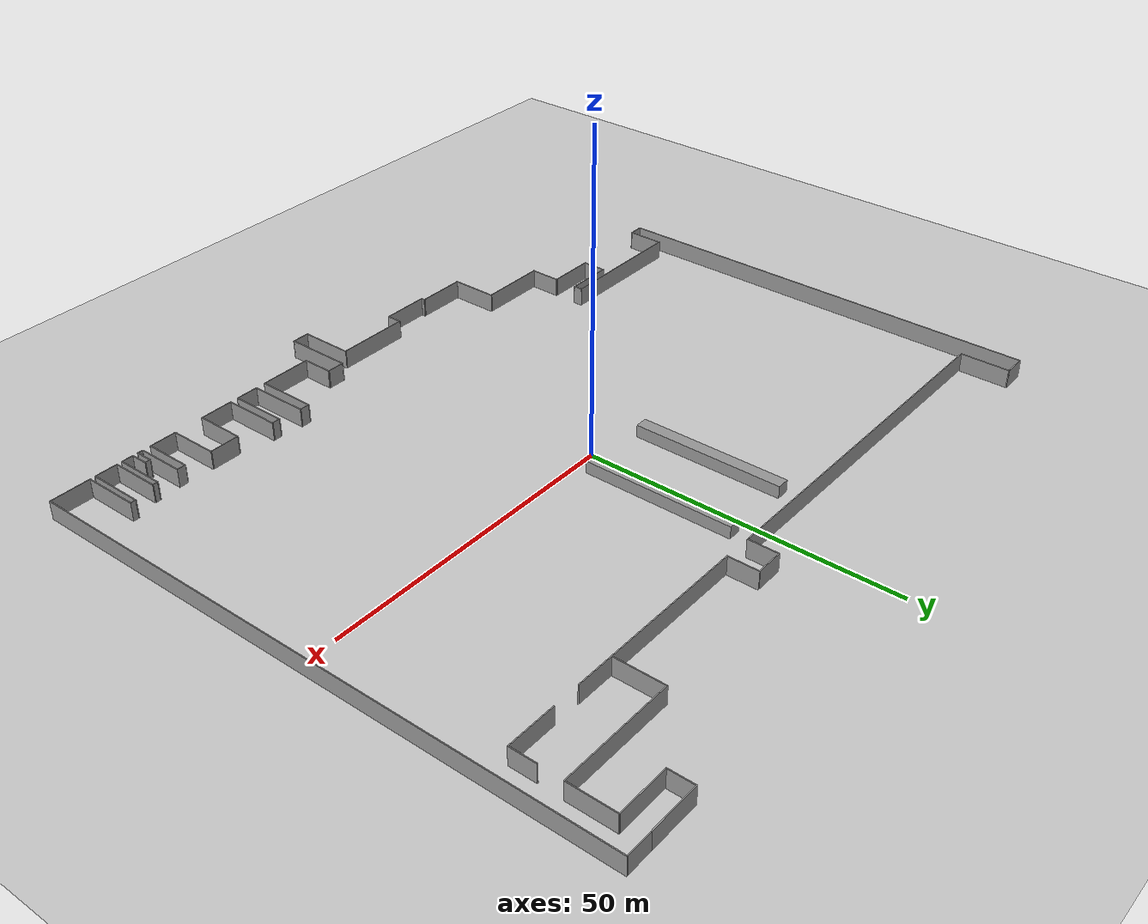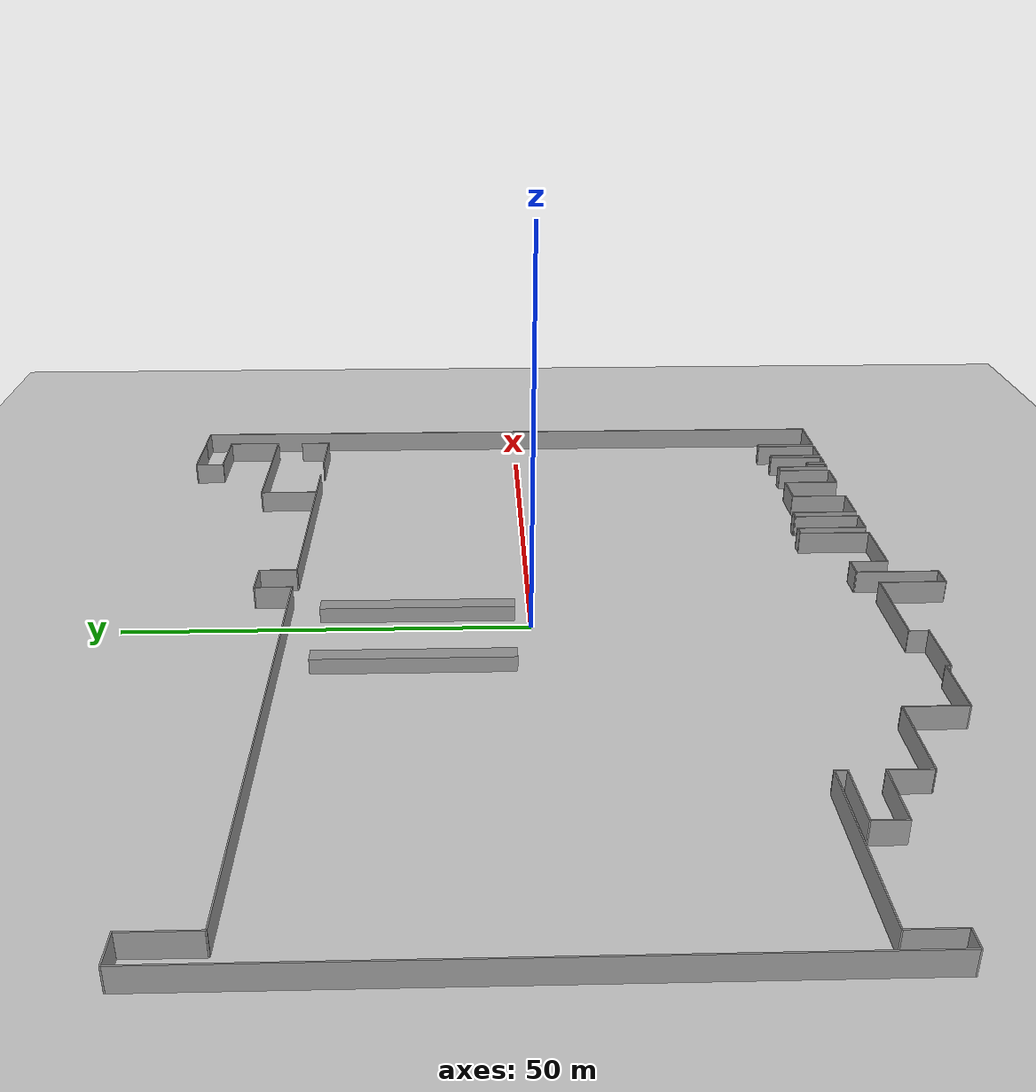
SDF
<sdf version="1.6">
 <world name="default">
  <model name="ground_plane">
   <static>1</static>
   <link name="link">
    <collision name="collision">
     <geometry><plane><normal>0 0 1</normal><size>120 120</size></plane></geometry>
     <surface>
      <contact><collide_bitmask>65535</collide_bitmask></contact>
      <friction><ode><mu>100</mu><mu2>50</mu2></ode></friction>
     </surface>
    </collision>
    <visual name="visual">
     <cast_shadows>0</cast_shadows>
     <geometry><plane><normal>0 0 1</normal><size>120 120</size></plane></geometry>
     <material>
      <script><uri>file://media/materials/scripts/gazebo.material</uri><name>Gazebo/Grey</name></script>
     </material>
    </visual>
   </link>
  </model>
  <model name="walls">
   <pose>-0.3813 -1.8007 0 0 -0 0</pose>
   <link name="Wall_0">
    <collision name="Wall_0_Collision">
     <geometry><box><size>21.75 0.15 3</size></box></geometry>
     <pose>0 0 1.5 0 -0 0</pose>
    </collision>
    <visual name="Wall_0_Visual">
     <pose>0 0 1.5 0 -0 0</pose>
     <geometry><box><size>21.75 0.15 3</size></box></geometry>
     <material>
      <script><uri>file://media/materials/scripts/gazebo.material</uri><name>Gazebo/Grey</name></script>
      <ambient>1 1 1 1</ambient>
     </material>
     <meta><layer>0</layer></meta>
    </visual>
    <pose>-43.7799 -26.4633 0 0 -0 3.14159</pose>
   </link>
   <link name="Wall_1">
    <collision name="Wall_1_Collision">
     <geometry><box><size>6 0.15 3</size></box></geometry>
     <pose>0 0 1.5 0 -0 0</pose>
    </collision>
    <visual name="Wall_1_Visual">
     <pose>0 0 1.5 0 -0 0</pose>
     <geometry><box><size>6 0.15 3</size></box></geometry>
     <material>
      <script><uri>file://media/materials/scripts/gazebo.material</uri><name>Gazebo/Grey</name></script>
      <ambient>1 1 1 1</ambient>
     </material>
     <meta><layer>0</layer></meta>
    </visual>
    <pose>-54.5799 -29.3883 0 0 -0 -1.5708</pose>
   </link>
   <link name="Wall_10">
    <collision name="Wall_10_Collision">
     <geometry><box><size>4.25 0.15 3</size></box></geometry>
     <pose>0 0 1.5 0 -0 0</pose>
    </collision>
    <visual name="Wall_10_Visual">
     <pose>0 0 1.5 0 -0 0</pose>
     <geometry><box><size>4.25 0.15 3</size></box></geometry>
     <material>
      <script><uri>file://media/materials/scripts/gazebo.material</uri><name>Gazebo/Grey</name></script>
      <ambient>1 1 1 1</ambient>
     </material>
     <meta><layer>0</layer></meta>
    </visual>
    <pose>52.8619 33.4688 0 0 -0 1.5708</pose>
   </link>
   <link name="Wall_100">
    <collision name="Wall_100_Collision">
     <geometry><box><size>3.9 0.15 3</size></box></geometry>
     <pose>0 0 1.5 0 -0 0</pose>
    </collision>
    <visual name="Wall_100_Visual">
     <pose>0 0 1.5 0 -0 0</pose>
     <geometry><box><size>3.9 0.15 3</size></box></geometry>
     <material>
      <script><uri>file://media/materials/scripts/gazebo.material</uri><name>Gazebo/Grey</name></script>
      <ambient>1 1 1 1</ambient>
     </material>
     <meta><layer>0</layer></meta>
    </visual>
    <pose>-55.0561 39.3752 0 0 -0 3.14159</pose>
   </link>
   <link name="Wall_102">
    <collision name="Wall_102_Collision">
     <geometry><box><size>7.75 0.15 3</size></box></geometry>
     <pose>0 0 1.5 0 -0 0</pose>
    </collision>
    <visual name="Wall_102_Visual">
     <pose>0 0 1.5 0 -0 0</pose>
     <geometry><box><size>7.75 0.15 3</size></box></geometry>
     <material>
      <script><uri>file://media/materials/scripts/gazebo.material</uri><name>Gazebo/Grey</name></script>
      <ambient>1 1 1 1</ambient>
     </material>
     <meta><layer>0</layer></meta>
    </visual>
    <pose>-36.7799 -27.8133 0 0 -0 3.14159</pose>
   </link>
   <link name="Wall_103">
    <collision name="Wall_103_Collision">
     <geometry><box><size>4 0.15 3</size></box></geometry>
     <pose>0 0 1.5 0 -0 0</pose>
    </collision>
    <visual name="Wall_103_Visual">
     <pose>0 0 1.5 0 -0 0</pose>
     <geometry><box><size>4 0.15 3</size></box></geometry>
     <material>
      <script><uri>file://media/materials/scripts/gazebo.material</uri><name>Gazebo/Grey</name></script>
      <ambient>1 1 1 1</ambient>
     </material>
     <meta><layer>0</layer></meta>
    </visual>
    <pose>-40.5799 -29.7383 0 0 -0 -1.5708</pose>
   </link>
   <link name="Wall_104">
    <collision name="Wall_104_Collision">
     <geometry><box><size>7.75 0.15 3</size></box></geometry>
     <pose>0 0 1.5 0 -0 0</pose>
    </collision>
    <visual name="Wall_104_Visual">
     <pose>0 0 1.5 0 -0 0</pose>
     <geometry><box><size>7.75 0.15 3</size></box></geometry>
     <material>
      <script><uri>file://media/materials/scripts/gazebo.material</uri><name>Gazebo/Grey</name></script>
      <ambient>1 1 1 1</ambient>
     </material>
     <meta><layer>0</layer></meta>
    </visual>
    <pose>-36.7799 -31.6633 0 0 -0 0</pose>
   </link>
   <link name="Wall_110">
    <collision name="Wall_110_Collision">
     <geometry><box><size>11 0.15 3</size></box></geometry>
     <pose>0 0 1.5 0 -0 0</pose>
    </collision>
    <visual name="Wall_110_Visual">
     <pose>0 0 1.5 0 -0 0</pose>
     <geometry><box><size>11 0.15 3</size></box></geometry>
     <material>
      <script><uri>file://media/materials/scripts/gazebo.material</uri><name>Gazebo/Grey</name></script>
      <ambient>1 1 1 1</ambient>
     </material>
     <meta><layer>0</layer></meta>
    </visual>
    <pose>-27.5715 -36.575 0 0 -0 3.14159</pose>
   </link>
   <link name="Wall_111">
    <collision name="Wall_111_Collision">
     <geometry><box><size>5.06174 0.15 3</size></box></geometry>
     <pose>0 0 1.5 0 -0 0</pose>
    </collision>
    <visual name="Wall_111_Visual">
     <pose>0 0 1.5 0 -0 0</pose>
     <geometry><box><size>5.06174 0.15 3</size></box></geometry>
     <material>
      <script><uri>file://media/materials/scripts/gazebo.material</uri><name>Gazebo/Grey</name></script>
      <ambient>1 1 1 1</ambient>
     </material>
     <meta><layer>0</layer></meta>
    </visual>
    <pose>-32.9882 -34.1191 0 0 -0 1.56743</pose>
   </link>
   <link name="Wall_113">
    <collision name="Wall_113_Collision">
     <geometry><box><size>2.5 0.15 3</size></box></geometry>
     <pose>0 0 1.5 0 -0 0</pose>
    </collision>
    <visual name="Wall_113_Visual">
     <pose>0 0 1.5 0 -0 0</pose>
     <geometry><box><size>2.5 0.15 3</size></box></geometry>
     <material>
      <script><uri>file://media/materials/scripts/gazebo.material</uri><name>Gazebo/Grey</name></script>
      <ambient>1 1 1 1</ambient>
     </material>
     <meta><layer>0</layer></meta>
    </visual>
    <pose>-6.64678 -43.4103 0 0 -0 -1.5708</pose>
   </link>
   <link name="Wall_114">
    <collision name="Wall_114_Collision">
     <geometry><box><size>7.75 0.15 3</size></box></geometry>
     <pose>0 0 1.5 0 -0 0</pose>
    </collision>
    <visual name="Wall_114_Visual">
     <pose>0 0 1.5 0 -0 0</pose>
     <geometry><box><size>7.75 0.15 3</size></box></geometry>
     <material>
      <script><uri>file://media/materials/scripts/gazebo.material</uri><name>Gazebo/Grey</name></script>
      <ambient>1 1 1 1</ambient>
     </material>
     <meta><layer>0</layer></meta>
    </visual>
    <pose>-10.4468 -44.5853 0 0 -0 3.14159</pose>
   </link>
   <link name="Wall_116">
    <collision name="Wall_116_Collision">
     <geometry><box><size>0.75 0.15 3</size></box></geometry>
     <pose>0 0 1.5 0 -0 0</pose>
    </collision>
    <visual name="Wall_116_Visual">
     <pose>0 0 1.5 0 -0 0</pose>
     <geometry><box><size>0.75 0.15 3</size></box></geometry>
     <material>
      <script><uri>file://media/materials/scripts/gazebo.material</uri><name>Gazebo/Grey</name></script>
      <ambient>1 1 1 1</ambient>
     </material>
     <meta><layer>0</layer></meta>
    </visual>
    <pose>-14.2468 -44.2853 0 0 -0 1.5708</pose>
   </link>
   <link name="Wall_117">
    <collision name="Wall_117_Collision">
     <geometry><box><size>8.05 0.15 3</size></box></geometry>
     <pose>0 0 1.5 0 -0 0</pose>
    </collision>
    <visual name="Wall_117_Visual">
     <pose>0 0 1.5 0 -0 0</pose>
     <geometry><box><size>8.05 0.15 3</size></box></geometry>
     <material>
      <script><uri>file://media/materials/scripts/gazebo.material</uri><name>Gazebo/Grey</name></script>
      <ambient>1 1 1 1</ambient>
     </material>
     <meta><layer>0</layer></meta>
    </visual>
    <pose>-18.1968 -43.9853 0 0 -0 3.14159</pose>
   </link>
   <link name="Wall_119">
    <collision name="Wall_119_Collision">
     <geometry><box><size>8.5 0.15 3</size></box></geometry>
     <pose>0 0 1.5 0 -0 0</pose>
    </collision>
    <visual name="Wall_119_Visual">
     <pose>0 0 1.5 0 -0 0</pose>
     <geometry><box><size>8.5 0.15 3</size></box></geometry>
     <material>
      <script><uri>file://media/materials/scripts/gazebo.material</uri><name>Gazebo/Grey</name></script>
      <ambient>1 1 1 1</ambient>
     </material>
     <meta><layer>0</layer></meta>
    </visual>
    <pose>5.20322 -46.4103 0 0 -0 -1.5708</pose>
   </link>
   <link name="Wall_12">
    <collision name="Wall_12_Collision">
     <geometry><box><size>18.75 0.15 3</size></box></geometry>
     <pose>0 0 1.5 0 -0 0</pose>
    </collision>
    <visual name="Wall_12_Visual">
     <pose>0 0 1.5 0 -0 0</pose>
     <geometry><box><size>18.75 0.15 3</size></box></geometry>
     <material>
      <script><uri>file://media/materials/scripts/gazebo.material</uri><name>Gazebo/Grey</name></script>
      <ambient>1 1 1 1</ambient>
     </material>
     <meta><layer>0</layer></meta>
    </visual>
    <pose>43.6596 39.3448 0 0 -0 3.14159</pose>
   </link>
   <link name="Wall_123">
    <collision name="Wall_123_Collision">
     <geometry><box><size>10.7438 0.15 3</size></box></geometry>
     <pose>0 0 1.5 0 -0 0</pose>
    </collision>
    <visual name="Wall_123_Visual">
     <pose>0 0 1.5 0 -0 0</pose>
     <geometry><box><size>10.7438 0.15 3</size></box></geometry>
     <material>
      <script><uri>file://media/materials/scripts/gazebo.material</uri><name>Gazebo/Grey</name></script>
      <ambient>1 1 1 1</ambient>
     </material>
     <meta><layer>0</layer></meta>
    </visual>
    <pose>7.99251 -45.3591 0 0 -0 -1.57021</pose>
   </link>
   <link name="Wall_126">
    <collision name="Wall_126_Collision">
     <geometry><box><size>8.25 0.15 3</size></box></geometry>
     <pose>0 0 1.5 0 -0 0</pose>
    </collision>
    <visual name="Wall_126_Visual">
     <pose>0 0 1.5 0 -0 0</pose>
     <geometry><box><size>8.25 0.15 3</size></box></geometry>
     <material>
      <script><uri>file://media/materials/scripts/gazebo.material</uri><name>Gazebo/Grey</name></script>
      <ambient>1 1 1 1</ambient>
     </material>
     <meta><layer>0</layer></meta>
    </visual>
    <pose>48.7751 50.656 0 0 -0 3.14159</pose>
   </link>
   <link name="Wall_127">
    <collision name="Wall_127_Collision">
     <geometry><box><size>3.97 0.15 3</size></box></geometry>
     <pose>0 0 1.5 0 -0 0</pose>
    </collision>
    <visual name="Wall_127_Visual">
     <pose>0 0 1.5 0 -0 0</pose>
     <geometry><box><size>3.97 0.15 3</size></box></geometry>
     <material>
      <script><uri>file://media/materials/scripts/gazebo.material</uri><name>Gazebo/Grey</name></script>
      <ambient>1 1 1 1</ambient>
     </material>
     <meta><layer>0</layer></meta>
    </visual>
    <pose>44.7251 48.606 0 0 -0 -1.5708</pose>
   </link>
   <link name="Wall_130">
    <collision name="Wall_130_Collision">
     <geometry><box><size>2.93 0.15 3</size></box></geometry>
     <pose>0 0 1.5 0 -0 0</pose>
    </collision>
    <visual name="Wall_130_Visual">
     <pose>0 0 1.5 0 -0 0</pose>
     <geometry><box><size>2.93 0.15 3</size></box></geometry>
     <material>
      <script><uri>file://media/materials/scripts/gazebo.material</uri><name>Gazebo/Grey</name></script>
      <ambient>1 1 1 1</ambient>
     </material>
     <meta><layer>0</layer></meta>
    </visual>
    <pose>6.6056 -50.656 0 0 -0 3.14159</pose>
   </link>
   <link name="Wall_14">
    <collision name="Wall_14_Collision">
     <geometry><box><size>7.5 0.15 3</size></box></geometry>
     <pose>0 0 1.5 0 -0 0</pose>
    </collision>
    <visual name="Wall_14_Visual">
     <pose>0 0 1.5 0 -0 0</pose>
     <geometry><box><size>7.5 0.15 3</size></box></geometry>
     <material>
      <script><uri>file://media/materials/scripts/gazebo.material</uri><name>Gazebo/Grey</name></script>
      <ambient>1 1 1 1</ambient>
     </material>
     <meta><layer>0</layer></meta>
    </visual>
    <pose>52.9596 43.0198 0 0 -0 1.5708</pose>
   </link>
   <link name="Wall_15">
    <collision name="Wall_15_Collision">
     <geometry><box><size>8.25 0.15 3</size></box></geometry>
     <pose>0 0 1.5 0 -0 0</pose>
    </collision>
    <visual name="Wall_15_Visual">
     <pose>0 0 1.5 0 -0 0</pose>
     <geometry><box><size>8.25 0.15 3</size></box></geometry>
     <material>
      <script><uri>file://media/materials/scripts/gazebo.material</uri><name>Gazebo/Grey</name></script>
      <ambient>1 1 1 1</ambient>
     </material>
     <meta><layer>0</layer></meta>
    </visual>
    <pose>48.9096 46.6948 0 0 -0 3.14159</pose>
   </link>
   <link name="Wall_17">
    <collision name="Wall_17_Collision">
     <geometry><box><size>4.25 0.15 3</size></box></geometry>
     <pose>0 0 1.5 0 -0 0</pose>
    </collision>
    <visual name="Wall_17_Visual">
     <pose>0 0 1.5 0 -0 0</pose>
     <geometry><box><size>4.25 0.15 3</size></box></geometry>
     <material>
      <script><uri>file://media/materials/scripts/gazebo.material</uri><name>Gazebo/Grey</name></script>
      <ambient>1 1 1 1</ambient>
     </material>
     <meta><layer>0</layer></meta>
    </visual>
    <pose>54.8751 50.656 0 0 -0 0</pose>
   </link>
   <link name="Wall_2">
    <collision name="Wall_2_Collision">
     <geometry><box><size>2.5 0.15 3</size></box></geometry>
     <pose>0 0 1.5 0 -0 0</pose>
    </collision>
    <visual name="Wall_2_Visual">
     <pose>0 0 1.5 0 -0 0</pose>
     <geometry><box><size>2.5 0.15 3</size></box></geometry>
     <material>
      <script><uri>file://media/materials/scripts/gazebo.material</uri><name>Gazebo/Grey</name></script>
      <ambient>1 1 1 1</ambient>
     </material>
     <meta><layer>0</layer></meta>
    </visual>
    <pose>-55.7549 -32.3132 0 0 -0 3.14159</pose>
   </link>
   <link name="Wall_3">
    <collision name="Wall_3_Collision">
     <geometry><box><size>71.75 0.15 3</size></box></geometry>
     <pose>0 0 1.5 0 -0 0</pose>
    </collision>
    <visual name="Wall_3_Visual">
     <pose>0 0 1.5 0 -0 0</pose>
     <geometry><box><size>71.75 0.15 3</size></box></geometry>
     <material>
      <script><uri>file://media/materials/scripts/gazebo.material</uri><name>Gazebo/Grey</name></script>
      <ambient>1 1 1 1</ambient>
     </material>
     <meta><layer>0</layer></meta>
    </visual>
    <pose>-56.9299 3.48675 0 0 -0 1.5708</pose>
   </link>
   <link name="Wall_33">
    <collision name="Wall_33_Collision">
     <geometry><box><size>1.5 0.15 3</size></box></geometry>
     <pose>0 0 1.5 0 -0 0</pose>
    </collision>
    <visual name="Wall_33_Visual">
     <pose>0 0 1.5 0 -0 0</pose>
     <geometry><box><size>1.5 0.15 3</size></box></geometry>
     <material>
      <script><uri>file://media/materials/scripts/gazebo.material</uri><name>Gazebo/Grey</name></script>
      <ambient>1 1 1 1</ambient>
     </material>
     <meta><layer>0</layer></meta>
    </visual>
    <pose>-32.9799 -27.1383 0 0 -0 -1.5708</pose>
   </link>
   <link name="Wall_37">
    <collision name="Wall_37_Collision">
     <geometry><box><size>7.5 0.15 3</size></box></geometry>
     <pose>0 0 1.5 0 -0 0</pose>
    </collision>
    <visual name="Wall_37_Visual">
     <pose>0 0 1.5 0 -0 0</pose>
     <geometry><box><size>7.5 0.15 3</size></box></geometry>
     <material>
      <script><uri>file://media/materials/scripts/gazebo.material</uri><name>Gazebo/Grey</name></script>
      <ambient>1 1 1 1</ambient>
     </material>
     <meta><layer>0</layer></meta>
    </visual>
    <pose>-22.1465 -40.25 0 0 -0 -1.5708</pose>
   </link>
   <link name="Wall_41">
    <collision name="Wall_41_Collision">
     <geometry><box><size>12 0.15 3</size></box></geometry>
     <pose>0 0 1.5 0 -0 0</pose>
    </collision>
    <visual name="Wall_41_Visual">
     <pose>0 0 1.5 0 -0 0</pose>
     <geometry><box><size>12 0.15 3</size></box></geometry>
     <material>
      <script><uri>file://media/materials/scripts/gazebo.material</uri><name>Gazebo/Grey</name></script>
      <ambient>1 1 1 1</ambient>
     </material>
     <meta><layer>0</layer></meta>
    </visual>
    <pose>-0.721776 -42.2353 0 0 -0 0</pose>
   </link>
   <link name="Wall_44">
    <collision name="Wall_44_Collision">
     <geometry><box><size>3 0.15 3</size></box></geometry>
     <pose>0 0 1.5 0 -0 0</pose>
    </collision>
    <visual name="Wall_44_Visual">
     <pose>0 0 1.5 0 -0 0</pose>
     <geometry><box><size>3 0.15 3</size></box></geometry>
     <material>
      <script><uri>file://media/materials/scripts/gazebo.material</uri><name>Gazebo/Grey</name></script>
      <ambient>1 1 1 1</ambient>
     </material>
     <meta><layer>0</layer></meta>
    </visual>
    <pose>9.41442 -40.0622 0 0 -0 0</pose>
   </link>
   <link name="Wall_45">
    <collision name="Wall_45_Collision">
     <geometry><box><size>5.0287 0.15 3</size></box></geometry>
     <pose>0 0 1.5 0 -0 0</pose>
    </collision>
    <visual name="Wall_45_Visual">
     <pose>0 0 1.5 0 -0 0</pose>
     <geometry><box><size>5.0287 0.15 3</size></box></geometry>
     <material>
      <script><uri>file://media/materials/scripts/gazebo.material</uri><name>Gazebo/Grey</name></script>
      <ambient>1 1 1 1</ambient>
     </material>
     <meta><layer>0</layer></meta>
    </visual>
    <pose>10.8394 -42.5015 0 0 -0 -1.5708</pose>
   </link>
   <link name="Wall_46">
    <collision name="Wall_46_Collision">
     <geometry><box><size>8.5 0.15 3</size></box></geometry>
     <pose>0 0 1.5 0 -0 0</pose>
    </collision>
    <visual name="Wall_46_Visual">
     <pose>0 0 1.5 0 -0 0</pose>
     <geometry><box><size>8.5 0.15 3</size></box></geometry>
     <material>
      <script><uri>file://media/materials/scripts/gazebo.material</uri><name>Gazebo/Grey</name></script>
      <ambient>1 1 1 1</ambient>
     </material>
     <meta><layer>0</layer></meta>
    </visual>
    <pose>15.0144 -44.9305 0 0 -0 0</pose>
   </link>
   <link name="Wall_47">
    <collision name="Wall_47_Collision">
     <geometry><box><size>9.5287 0.15 3</size></box></geometry>
     <pose>0 0 1.5 0 -0 0</pose>
    </collision>
    <visual name="Wall_47_Visual">
     <pose>0 0 1.5 0 -0 0</pose>
     <geometry><box><size>9.5287 0.15 3</size></box></geometry>
     <material>
      <script><uri>file://media/materials/scripts/gazebo.material</uri><name>Gazebo/Grey</name></script>
      <ambient>1 1 1 1</ambient>
     </material>
     <meta><layer>0</layer></meta>
    </visual>
    <pose>19.1894 -40.2515 0 0 -0 1.5708</pose>
   </link>
   <link name="Wall_48">
    <collision name="Wall_48_Collision">
     <geometry><box><size>1.75 0.15 3</size></box></geometry>
     <pose>0 0 1.5 0 -0 0</pose>
    </collision>
    <visual name="Wall_48_Visual">
     <pose>0 0 1.5 0 -0 0</pose>
     <geometry><box><size>1.75 0.15 3</size></box></geometry>
     <material>
      <script><uri>file://media/materials/scripts/gazebo.material</uri><name>Gazebo/Grey</name></script>
      <ambient>1 1 1 1</ambient>
     </material>
     <meta><layer>0</layer></meta>
    </visual>
    <pose>19.9894 -35.5622 0 0 -0 0</pose>
   </link>
   <link name="Wall_49">
    <collision name="Wall_49_Collision">
     <geometry><box><size>9.51834 0.15 3</size></box></geometry>
     <pose>0 0 1.5 0 -0 0</pose>
    </collision>
    <visual name="Wall_49_Visual">
     <pose>0 0 1.5 0 -0 0</pose>
     <geometry><box><size>9.51834 0.15 3</size></box></geometry>
     <material>
      <script><uri>file://media/materials/scripts/gazebo.material</uri><name>Gazebo/Grey</name></script>
      <ambient>1 1 1 1</ambient>
     </material>
     <meta><layer>0</layer></meta>
    </visual>
    <pose>20.7946 -40.2463 0 0 -0 -1.56969</pose>
   </link>
   <link name="Wall_5">
    <collision name="Wall_5_Collision">
     <geometry><box><size>59.25 0.15 3</size></box></geometry>
     <pose>0 0 1.5 0 -0 0</pose>
    </collision>
    <visual name="Wall_5_Visual">
     <pose>0 0 1.5 0 -0 0</pose>
     <geometry><box><size>59.25 0.15 3</size></box></geometry>
     <material>
      <script><uri>file://media/materials/scripts/gazebo.material</uri><name>Gazebo/Grey</name></script>
      <ambient>1 1 1 1</ambient>
     </material>
     <meta><layer>0</layer></meta>
    </visual>
    <pose>-23.6461 31.5252 0 0 -0 0</pose>
   </link>
   <link name="Wall_50">
    <collision name="Wall_50_Collision">
     <geometry><box><size>3.75 0.15 3</size></box></geometry>
     <pose>0 0 1.5 0 -0 0</pose>
    </collision>
    <visual name="Wall_50_Visual">
     <pose>0 0 1.5 0 -0 0</pose>
     <geometry><box><size>3.75 0.15 3</size></box></geometry>
     <material>
      <script><uri>file://media/materials/scripts/gazebo.material</uri><name>Gazebo/Grey</name></script>
      <ambient>1 1 1 1</ambient>
     </material>
     <meta><layer>0</layer></meta>
    </visual>
    <pose>22.5998 -44.9201 0 0 -0 0</pose>
   </link>
   <link name="Wall_51">
    <collision name="Wall_51_Collision">
     <geometry><box><size>9.01834 0.15 3</size></box></geometry>
     <pose>0 0 1.5 0 -0 0</pose>
    </collision>
    <visual name="Wall_51_Visual">
     <pose>0 0 1.5 0 -0 0</pose>
     <geometry><box><size>9.01834 0.15 3</size></box></geometry>
     <material>
      <script><uri>file://media/materials/scripts/gazebo.material</uri><name>Gazebo/Grey</name></script>
      <ambient>1 1 1 1</ambient>
     </material>
     <meta><layer>0</layer></meta>
    </visual>
    <pose>24.3946 -40.4963 0 0 -0 1.57197</pose>
   </link>
   <link name="Wall_52">
    <collision name="Wall_52_Collision">
     <geometry><box><size>1.5 0.15 3</size></box></geometry>
     <pose>0 0 1.5 0 -0 0</pose>
    </collision>
    <visual name="Wall_52_Visual">
     <pose>0 0 1.5 0 -0 0</pose>
     <geometry><box><size>1.5 0.15 3</size></box></geometry>
     <material>
      <script><uri>file://media/materials/scripts/gazebo.material</uri><name>Gazebo/Grey</name></script>
      <ambient>1 1 1 1</ambient>
     </material>
     <meta><layer>0</layer></meta>
    </visual>
    <pose>25.0644 -36.0622 0 0 -0 0</pose>
   </link>
   <link name="Wall_53">
    <collision name="Wall_53_Collision">
     <geometry><box><size>9.01713 0.15 3</size></box></geometry>
     <pose>0 0 1.5 0 -0 0</pose>
    </collision>
    <visual name="Wall_53_Visual">
     <pose>0 0 1.5 0 -0 0</pose>
     <geometry><box><size>9.01713 0.15 3</size></box></geometry>
     <material>
      <script><uri>file://media/materials/scripts/gazebo.material</uri><name>Gazebo/Grey</name></script>
      <ambient>1 1 1 1</ambient>
     </material>
     <meta><layer>0</layer></meta>
    </visual>
    <pose>25.7394 -40.4957 0 0 -0 -1.5708</pose>
   </link>
   <link name="Wall_54">
    <collision name="Wall_54_Collision">
     <geometry><box><size>5.5 0.15 3</size></box></geometry>
     <pose>0 0 1.5 0 -0 0</pose>
    </collision>
    <visual name="Wall_54_Visual">
     <pose>0 0 1.5 0 -0 0</pose>
     <geometry><box><size>5.5 0.15 3</size></box></geometry>
     <material>
      <script><uri>file://media/materials/scripts/gazebo.material</uri><name>Gazebo/Grey</name></script>
      <ambient>1 1 1 1</ambient>
     </material>
     <meta><layer>0</layer></meta>
    </visual>
    <pose>28.4144 -44.9189 0 0 -0 0</pose>
   </link>
   <link name="Wall_55">
    <collision name="Wall_55_Collision">
     <geometry><box><size>7.76713 0.15 3</size></box></geometry>
     <pose>0 0 1.5 0 -0 0</pose>
    </collision>
    <visual name="Wall_55_Visual">
     <pose>0 0 1.5 0 -0 0</pose>
     <geometry><box><size>7.76713 0.15 3</size></box></geometry>
     <material>
      <script><uri>file://media/materials/scripts/gazebo.material</uri><name>Gazebo/Grey</name></script>
      <ambient>1 1 1 1</ambient>
     </material>
     <meta><layer>0</layer></meta>
    </visual>
    <pose>31.0894 -41.1207 0 0 -0 1.5708</pose>
   </link>
   <link name="Wall_56">
    <collision name="Wall_56_Collision">
     <geometry><box><size>5 0.15 3</size></box></geometry>
     <pose>0 0 1.5 0 -0 0</pose>
    </collision>
    <visual name="Wall_56_Visual">
     <pose>0 0 1.5 0 -0 0</pose>
     <geometry><box><size>5 0.15 3</size></box></geometry>
     <material>
      <script><uri>file://media/materials/scripts/gazebo.material</uri><name>Gazebo/Grey</name></script>
      <ambient>1 1 1 1</ambient>
     </material>
     <meta><layer>0</layer></meta>
    </visual>
    <pose>33.5144 -37.3122 0 0 -0 0</pose>
   </link>
   <link name="Wall_57">
    <collision name="Wall_57_Collision">
     <geometry><box><size>7.75 0.15 3</size></box></geometry>
     <pose>0 0 1.5 0 -0 0</pose>
    </collision>
    <visual name="Wall_57_Visual">
     <pose>0 0 1.5 0 -0 0</pose>
     <geometry><box><size>7.75 0.15 3</size></box></geometry>
     <material>
      <script><uri>file://media/materials/scripts/gazebo.material</uri><name>Gazebo/Grey</name></script>
      <ambient>1 1 1 1</ambient>
     </material>
     <meta><layer>0</layer></meta>
    </visual>
    <pose>35.9394 -41.1122 0 0 -0 -1.5708</pose>
   </link>
   <link name="Wall_58">
    <collision name="Wall_58_Collision">
     <geometry><box><size>4.5 0.15 3</size></box></geometry>
     <pose>0 0 1.5 0 -0 0</pose>
    </collision>
    <visual name="Wall_58_Visual">
     <pose>0 0 1.5 0 -0 0</pose>
     <geometry><box><size>4.5 0.15 3</size></box></geometry>
     <material>
      <script><uri>file://media/materials/scripts/gazebo.material</uri><name>Gazebo/Grey</name></script>
      <ambient>1 1 1 1</ambient>
     </material>
     <meta><layer>0</layer></meta>
    </visual>
    <pose>38.1144 -44.9122 0 0 -0 0</pose>
   </link>
   <link name="Wall_59">
    <collision name="Wall_59_Collision">
     <geometry><box><size>7.5 0.15 3</size></box></geometry>
     <pose>0 0 1.5 0 -0 0</pose>
    </collision>
    <visual name="Wall_59_Visual">
     <pose>0 0 1.5 0 -0 0</pose>
     <geometry><box><size>7.5 0.15 3</size></box></geometry>
     <material>
      <script><uri>file://media/materials/scripts/gazebo.material</uri><name>Gazebo/Grey</name></script>
      <ambient>1 1 1 1</ambient>
     </material>
     <meta><layer>0</layer></meta>
    </visual>
    <pose>40.2894 -41.2372 0 0 -0 1.5708</pose>
   </link>
   <link name="Wall_60">
    <collision name="Wall_60_Collision">
     <geometry><box><size>1.5 0.15 3</size></box></geometry>
     <pose>0 0 1.5 0 -0 0</pose>
    </collision>
    <visual name="Wall_60_Visual">
     <pose>0 0 1.5 0 -0 0</pose>
     <geometry><box><size>1.5 0.15 3</size></box></geometry>
     <material>
      <script><uri>file://media/materials/scripts/gazebo.material</uri><name>Gazebo/Grey</name></script>
      <ambient>1 1 1 1</ambient>
     </material>
     <meta><layer>0</layer></meta>
    </visual>
    <pose>40.9644 -37.5622 0 0 -0 0</pose>
   </link>
   <link name="Wall_61">
    <collision name="Wall_61_Collision">
     <geometry><box><size>7.4988 0.15 3</size></box></geometry>
     <pose>0 0 1.5 0 -0 0</pose>
    </collision>
    <visual name="Wall_61_Visual">
     <pose>0 0 1.5 0 -0 0</pose>
     <geometry><box><size>7.4988 0.15 3</size></box></geometry>
     <material>
      <script><uri>file://media/materials/scripts/gazebo.material</uri><name>Gazebo/Grey</name></script>
      <ambient>1 1 1 1</ambient>
     </material>
     <meta><layer>0</layer></meta>
    </visual>
    <pose>41.6394 -41.2366 0 0 -0 -1.5708</pose>
   </link>
   <link name="Wall_68">
    <collision name="Wall_68_Collision">
     <geometry><box><size>1 0.15 3</size></box></geometry>
     <pose>0 0 1.5 0 -0 0</pose>
    </collision>
    <visual name="Wall_68_Visual">
     <pose>0 0 1.5 0 -0 0</pose>
     <geometry><box><size>1 0.15 3</size></box></geometry>
     <material>
      <script><uri>file://media/materials/scripts/gazebo.material</uri><name>Gazebo/Grey</name></script>
      <ambient>1 1 1 1</ambient>
     </material>
     <meta><layer>0</layer></meta>
    </visual>
    <pose>42.0644 -44.9213 0 0 -0 0</pose>
   </link>
   <link name="Wall_69">
    <collision name="Wall_69_Collision">
     <geometry><box><size>2.7488 0.15 3</size></box></geometry>
     <pose>0 0 1.5 0 -0 0</pose>
    </collision>
    <visual name="Wall_69_Visual">
     <pose>0 0 1.5 0 -0 0</pose>
     <geometry><box><size>2.7488 0.15 3</size></box></geometry>
     <material>
      <script><uri>file://media/materials/scripts/gazebo.material</uri><name>Gazebo/Grey</name></script>
      <ambient>1 1 1 1</ambient>
     </material>
     <meta><layer>0</layer></meta>
    </visual>
    <pose>42.4894 -43.6116 0 0 -0 1.5708</pose>
   </link>
   <link name="Wall_7">
    <collision name="Wall_7_Collision">
     <geometry><box><size>30.25 0.15 3</size></box></geometry>
     <pose>0 0 1.5 0 -0 0</pose>
    </collision>
    <visual name="Wall_7_Visual">
     <pose>0 0 1.5 0 -0 0</pose>
     <geometry><box><size>30.25 0.15 3</size></box></geometry>
     <material>
      <script><uri>file://media/materials/scripts/gazebo.material</uri><name>Gazebo/Grey</name></script>
      <ambient>1 1 1 1</ambient>
     </material>
     <meta><layer>0</layer></meta>
    </visual>
    <pose>25.4816 31.4188 0 0 -0 0</pose>
   </link>
   <link name="Wall_70">
    <collision name="Wall_70_Collision">
     <geometry><box><size>1 0.15 3</size></box></geometry>
     <pose>0 0 1.5 0 -0 0</pose>
    </collision>
    <visual name="Wall_70_Visual">
     <pose>0 0 1.5 0 -0 0</pose>
     <geometry><box><size>1 0.15 3</size></box></geometry>
     <material>
      <script><uri>file://media/materials/scripts/gazebo.material</uri><name>Gazebo/Grey</name></script>
      <ambient>1 1 1 1</ambient>
     </material>
     <meta><layer>0</layer></meta>
    </visual>
    <pose>42.9144 -42.3122 0 0 -0 0</pose>
   </link>
   <link name="Wall_71">
    <collision name="Wall_71_Collision">
     <geometry><box><size>2.7799 0.15 3</size></box></geometry>
     <pose>0 0 1.5 0 -0 0</pose>
    </collision>
    <visual name="Wall_71_Visual">
     <pose>0 0 1.5 0 -0 0</pose>
     <geometry><box><size>2.7799 0.15 3</size></box></geometry>
     <material>
      <script><uri>file://media/materials/scripts/gazebo.material</uri><name>Gazebo/Grey</name></script>
      <ambient>1 1 1 1</ambient>
     </material>
     <meta><layer>0</layer></meta>
    </visual>
    <pose>43.3394 -43.6271 0 0 -0 -1.5708</pose>
   </link>
   <link name="Wall_72">
    <collision name="Wall_72_Collision">
     <geometry><box><size>2 0.15 3</size></box></geometry>
     <pose>0 0 1.5 0 -0 0</pose>
    </collision>
    <visual name="Wall_72_Visual">
     <pose>0 0 1.5 0 -0 0</pose>
     <geometry><box><size>2 0.15 3</size></box></geometry>
     <material>
      <script><uri>file://media/materials/scripts/gazebo.material</uri><name>Gazebo/Grey</name></script>
      <ambient>1 1 1 1</ambient>
     </material>
     <meta><layer>0</layer></meta>
    </visual>
    <pose>44.2644 -44.9317 0 0 -0 0</pose>
   </link>
   <link name="Wall_73">
    <collision name="Wall_73_Collision">
     <geometry><box><size>7.7799 0.15 3</size></box></geometry>
     <pose>0 0 1.5 0 -0 0</pose>
    </collision>
    <visual name="Wall_73_Visual">
     <pose>0 0 1.5 0 -0 0</pose>
     <geometry><box><size>7.7799 0.15 3</size></box></geometry>
     <material>
      <script><uri>file://media/materials/scripts/gazebo.material</uri><name>Gazebo/Grey</name></script>
      <ambient>1 1 1 1</ambient>
     </material>
     <meta><layer>0</layer></meta>
    </visual>
    <pose>45.1894 -41.1271 0 0 -0 1.5708</pose>
   </link>
   <link name="Wall_74">
    <collision name="Wall_74_Collision">
     <geometry><box><size>1 0.15 3</size></box></geometry>
     <pose>0 0 1.5 0 -0 0</pose>
    </collision>
    <visual name="Wall_74_Visual">
     <pose>0 0 1.5 0 -0 0</pose>
     <geometry><box><size>1 0.15 3</size></box></geometry>
     <material>
      <script><uri>file://media/materials/scripts/gazebo.material</uri><name>Gazebo/Grey</name></script>
      <ambient>1 1 1 1</ambient>
     </material>
     <meta><layer>0</layer></meta>
    </visual>
    <pose>45.6144 -37.3122 0 0 -0 0</pose>
   </link>
   <link name="Wall_75">
    <collision name="Wall_75_Collision">
     <geometry><box><size>7.76956 0.15 3</size></box></geometry>
     <pose>0 0 1.5 0 -0 0</pose>
    </collision>
    <visual name="Wall_75_Visual">
     <pose>0 0 1.5 0 -0 0</pose>
     <geometry><box><size>7.76956 0.15 3</size></box></geometry>
     <material>
      <script><uri>file://media/materials/scripts/gazebo.material</uri><name>Gazebo/Grey</name></script>
      <ambient>1 1 1 1</ambient>
     </material>
     <meta><layer>0</layer></meta>
    </visual>
    <pose>46.0394 -41.1219 0 0 -0 -1.5708</pose>
   </link>
   <link name="Wall_76">
    <collision name="Wall_76_Collision">
     <geometry><box><size>3.75 0.15 3</size></box></geometry>
     <pose>0 0 1.5 0 -0 0</pose>
    </collision>
    <visual name="Wall_76_Visual">
     <pose>0 0 1.5 0 -0 0</pose>
     <geometry><box><size>3.75 0.15 3</size></box></geometry>
     <material>
      <script><uri>file://media/materials/scripts/gazebo.material</uri><name>Gazebo/Grey</name></script>
      <ambient>1 1 1 1</ambient>
     </material>
     <meta><layer>0</layer></meta>
    </visual>
    <pose>47.8498 -44.9317 0 0 -0 0</pose>
   </link>
   <link name="Wall_77">
    <collision name="Wall_77_Collision">
     <geometry><box><size>8.76956 0.15 3</size></box></geometry>
     <pose>0 0 1.5 0 -0 0</pose>
    </collision>
    <visual name="Wall_77_Visual">
     <pose>0 0 1.5 0 -0 0</pose>
     <geometry><box><size>8.76956 0.15 3</size></box></geometry>
     <material>
      <script><uri>file://media/materials/scripts/gazebo.material</uri><name>Gazebo/Grey</name></script>
      <ambient>1 1 1 1</ambient>
     </material>
     <meta><layer>0</layer></meta>
    </visual>
    <pose>49.6394 -40.6219 0 0 -0 1.5708</pose>
   </link>
   <link name="Wall_78">
    <collision name="Wall_78_Collision">
     <geometry><box><size>1 0.15 3</size></box></geometry>
     <pose>0 0 1.5 0 -0 0</pose>
    </collision>
    <visual name="Wall_78_Visual">
     <pose>0 0 1.5 0 -0 0</pose>
     <geometry><box><size>1 0.15 3</size></box></geometry>
     <material>
      <script><uri>file://media/materials/scripts/gazebo.material</uri><name>Gazebo/Grey</name></script>
      <ambient>1 1 1 1</ambient>
     </material>
     <meta><layer>0</layer></meta>
    </visual>
    <pose>50.0644 -36.3122 0 0 -0 0</pose>
   </link>
   <link name="Wall_79">
    <collision name="Wall_79_Collision">
     <geometry><box><size>8.75 0.15 3</size></box></geometry>
     <pose>0 0 1.5 0 -0 0</pose>
    </collision>
    <visual name="Wall_79_Visual">
     <pose>0 0 1.5 0 -0 0</pose>
     <geometry><box><size>8.75 0.15 3</size></box></geometry>
     <material>
      <script><uri>file://media/materials/scripts/gazebo.material</uri><name>Gazebo/Grey</name></script>
      <ambient>1 1 1 1</ambient>
     </material>
     <meta><layer>0</layer></meta>
    </visual>
    <pose>50.4894 -40.6122 0 0 -0 -1.5708</pose>
   </link>
   <link name="Wall_84">
    <collision name="Wall_84_Collision">
     <geometry><box><size>95.7269 0.15 3</size></box></geometry>
     <pose>0 0 1.5 0 -0 0</pose>
    </collision>
    <visual name="Wall_84_Visual">
     <pose>0 0 1.5 0 -0 0</pose>
     <geometry><box><size>95.7269 0.15 3</size></box></geometry>
     <material>
      <script><uri>file://media/materials/scripts/gazebo.material</uri><name>Gazebo/Grey</name></script>
      <ambient>1 1 1 1</ambient>
     </material>
     <meta><layer>0</layer></meta>
    </visual>
    <pose>56.9275 2.86758 0 0 -0 -1.57075</pose>
   </link>
   <link name="Wall_86">
    <collision name="Wall_86_Collision">
     <geometry><box><size>6.55 0.15 3</size></box></geometry>
     <pose>0 0 1.5 0 -0 0</pose>
    </collision>
    <visual name="Wall_86_Visual">
     <pose>0 0 1.5 0 -0 0</pose>
     <geometry><box><size>6.55 0.15 3</size></box></geometry>
     <material>
      <script><uri>file://media/materials/scripts/gazebo.material</uri><name>Gazebo/Grey</name></script>
      <ambient>1 1 1 1</ambient>
     </material>
     <meta><layer>0</layer></meta>
    </visual>
    <pose>53.7092 -44.9209 0 0 -0 3.14159</pose>
   </link>
   <link name="Wall_88">
    <collision name="Wall_88_Collision">
     <geometry><box><size>8 0.15 3</size></box></geometry>
     <pose>0 0 1.5 0 -0 0</pose>
    </collision>
    <visual name="Wall_88_Visual">
     <pose>0 0 1.5 0 -0 0</pose>
     <geometry><box><size>8 0.15 3</size></box></geometry>
     <material>
      <script><uri>file://media/materials/scripts/gazebo.material</uri><name>Gazebo/Grey</name></script>
      <ambient>1 1 1 1</ambient>
     </material>
     <meta><layer>0</layer></meta>
    </visual>
    <pose>34.3596 35.4198 0 0 -0 -1.5708</pose>
   </link>
   <link name="Wall_9">
    <collision name="Wall_9_Collision">
     <geometry><box><size>8 0.15 3</size></box></geometry>
     <pose>0 0 1.5 0 -0 0</pose>
    </collision>
    <visual name="Wall_9_Visual">
     <pose>0 0 1.5 0 -0 0</pose>
     <geometry><box><size>8 0.15 3</size></box></geometry>
     <material>
      <script><uri>file://media/materials/scripts/gazebo.material</uri><name>Gazebo/Grey</name></script>
      <ambient>1 1 1 1</ambient>
     </material>
     <meta><layer>0</layer></meta>
    </visual>
    <pose>48.9369 31.4188 0 0 -0 0</pose>
   </link>
   <link name="Wall_90">
    <collision name="Wall_90_Collision">
     <geometry><box><size>4.75 0.15 3</size></box></geometry>
     <pose>0 0 1.5 0 -0 0</pose>
    </collision>
    <visual name="Wall_90_Visual">
     <pose>0 0 1.5 0 -0 0</pose>
     <geometry><box><size>4.75 0.15 3</size></box></geometry>
     <material>
      <script><uri>file://media/materials/scripts/gazebo.material</uri><name>Gazebo/Grey</name></script>
      <ambient>1 1 1 1</ambient>
     </material>
     <meta><layer>0</layer></meta>
    </visual>
    <pose>5.90393 33.8252 0 0 -0 1.5708</pose>
   </link>
   <link name="Wall_96">
    <collision name="Wall_96_Collision">
     <geometry><box><size>5 0.15 3</size></box></geometry>
     <pose>0 0 1.5 0 -0 0</pose>
    </collision>
    <visual name="Wall_96_Visual">
     <pose>0 0 1.5 0 -0 0</pose>
     <geometry><box><size>5 0.15 3</size></box></geometry>
     <material>
      <script><uri>file://media/materials/scripts/gazebo.material</uri><name>Gazebo/Grey</name></script>
      <ambient>1 1 1 1</ambient>
     </material>
     <meta><layer>0</layer></meta>
    </visual>
    <pose>10.4316 33.8438 0 0 -0 1.5708</pose>
   </link>
   <link name="Wall_97">
    <collision name="Wall_97_Collision">
     <geometry><box><size>4.6 0.15 3</size></box></geometry>
     <pose>0 0 1.5 0 -0 0</pose>
    </collision>
    <visual name="Wall_97_Visual">
     <pose>0 0 1.5 0 -0 0</pose>
     <geometry><box><size>4.6 0.15 3</size></box></geometry>
     <material>
      <script><uri>file://media/materials/scripts/gazebo.material</uri><name>Gazebo/Grey</name></script>
      <ambient>1 1 1 1</ambient>
     </material>
     <meta><layer>0</layer></meta>
    </visual>
    <pose>8.1316 36.2688 0 0 -0 3.14159</pose>
   </link>
   <link name="Wall_99">
    <collision name="Wall_99_Collision">
     <geometry><box><size>8 0.15 3</size></box></geometry>
     <pose>0 0 1.5 0 -0 0</pose>
    </collision>
    <visual name="Wall_99_Visual">
     <pose>0 0 1.5 0 -0 0</pose>
     <geometry><box><size>8 0.15 3</size></box></geometry>
     <material>
      <script><uri>file://media/materials/scripts/gazebo.material</uri><name>Gazebo/Grey</name></script>
      <ambient>1 1 1 1</ambient>
     </material>
     <meta><layer>0</layer></meta>
    </visual>
    <pose>-53.1961 35.4502 0 0 -0 1.5708</pose>
   </link>
   <static>1</static>
  </model>
  <model name="box28">
   <link name="link">
    <inertial>
     <mass>50</mass>
     <inertia><ixx>8.33333</ixx><ixy>0</ixy><ixz>0</ixz><iyy>8.33333</iyy><iyz>0</iyz><izz>8.33333</izz></inertia>
    </inertial>
    <pose>5.70963 -14.2059 0.5 0 -0 0</pose>
    <gravity>0</gravity>
    <visual name="visual">
     <geometry><box><size>2 24 2</size></box></geometry>
     <material>
      <script><name>Gazebo/Grey</name><uri>file://media/materials/scripts/gazebo.material</uri></script>
      <shader type="pixel"><normal_map>__default__</normal_map></shader>
      <ambient>0.3 0.3 0.3 1</ambient>
      <diffuse>0.7 0.7 0.7 1</diffuse>
      <specular>0.01 0.01 0.01 1</specular>
      <emissive>0 0 0 1</emissive>
     </material>
    </visual>
    <collision name="collision">
     <geometry><box><size>2 24 2</size></box></geometry>
     <surface>
      <friction>
       <ode><mu>1</mu><mu2>1</mu2><fdir1>0 0 0</fdir1><slip1>0</slip1><slip2>0</slip2></ode>
       <torsional>
        <coefficient>1</coefficient>
        <patch_radius>0</patch_radius>
        <surface_radius>0</surface_radius>
        <use_patch_radius>1</use_patch_radius>
        <ode><slip>0</slip></ode>
       </torsional>
      </friction>
      <bounce><restitution_coefficient>0</restitution_coefficient><threshold>1e+06</threshold></bounce>
      <contact>
       <collide_without_contact>0</collide_without_contact>
       <collide_without_contact_bitmask>1</collide_without_contact_bitmask>
       <collide_bitmask>1</collide_bitmask>
       <ode>
        <soft_cfm>0</soft_cfm>
        <soft_erp>0.2</soft_erp>
        <kp>1e+13</kp>
        <kd>1</kd>
        <max_vel>0.01</max_vel>
        <min_depth>0</min_depth>
       </ode>
       <bullet>
        <split_impulse>1</split_impulse>
        <split_impulse_penetration_threshold>-0.01</split_impulse_penetration_threshold>
        <soft_cfm>0</soft_cfm>
        <soft_erp>0.2</soft_erp>
        <kp>1e+13</kp>
        <kd>1</kd>
       </bullet>
      </contact>
     </surface>
    </collision>
   </link>
   <static>0</static>
   <pose>-14.6607 28.2625 0.5 0 -0 0</pose>
  </model>
  <model name="box29">
   <link name="link">
    <inertial>
     <mass>50</mass>
     <inertia><ixx>8.33333</ixx><ixy>0</ixy><ixz>0</ixz><iyy>8.33333</iyy><iyz>0</iyz><izz>8.33333</izz></inertia>
    </inertial>
    <pose>5.70963 -14.2059 0.5 0 -0 0</pose>
    <gravity>0</gravity>
    <visual name="visual">
     <geometry><box><size>2 24 2</size></box></geometry>
     <material>
      <script><name>Gazebo/Grey</name><uri>file://media/materials/scripts/gazebo.material</uri></script>
      <shader type="pixel"><normal_map>__default__</normal_map></shader>
      <ambient>0.3 0.3 0.3 1</ambient>
      <diffuse>0.7 0.7 0.7 1</diffuse>
      <specular>0.01 0.01 0.01 1</specular>
      <emissive>0 0 0 1</emissive>
     </material>
    </visual>
    <collision name="collision">
     <geometry><box><size>2 24 2</size></box></geometry>
     <surface>
      <friction>
       <ode><mu>1</mu><mu2>1</mu2><fdir1>0 0 0</fdir1><slip1>0</slip1><slip2>0</slip2></ode>
       <torsional>
        <coefficient>1</coefficient>
        <patch_radius>0</patch_radius>
        <surface_radius>0</surface_radius>
        <use_patch_radius>1</use_patch_radius>
        <ode><slip>0</slip></ode>
       </torsional>
      </friction>
      <bounce><restitution_coefficient>0</restitution_coefficient><threshold>1e+06</threshold></bounce>
      <contact>
       <collide_without_contact>0</collide_without_contact>
       <collide_without_contact_bitmask>1</collide_without_contact_bitmask>
       <collide_bitmask>1</collide_bitmask>
       <ode>
        <soft_cfm>0</soft_cfm>
        <soft_erp>0.2</soft_erp>
        <kp>1e+13</kp>
        <kd>1</kd>
        <max_vel>0.01</max_vel>
        <min_depth>0</min_depth>
       </ode>
       <bullet>
        <split_impulse>1</split_impulse>
        <split_impulse_penetration_threshold>-0.01</split_impulse_penetration_threshold>
        <soft_cfm>0</soft_cfm>
        <soft_erp>0.2</soft_erp>
        <kp>1e+13</kp>
        <kd>1</kd>
       </bullet>
      </contact>
     </surface>
    </collision>
   </link>
   <static>0</static>
   <pose>-3.05654 28.1602 0.5 0 -0 0</pose>
  </model>
 </world>
</sdf>
